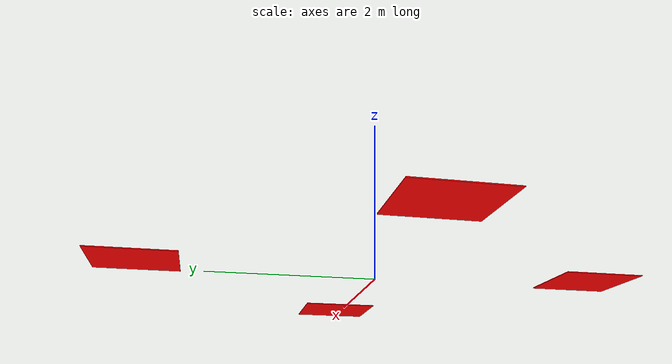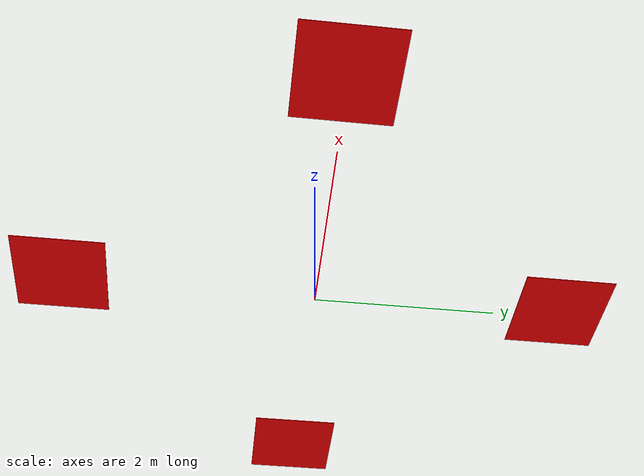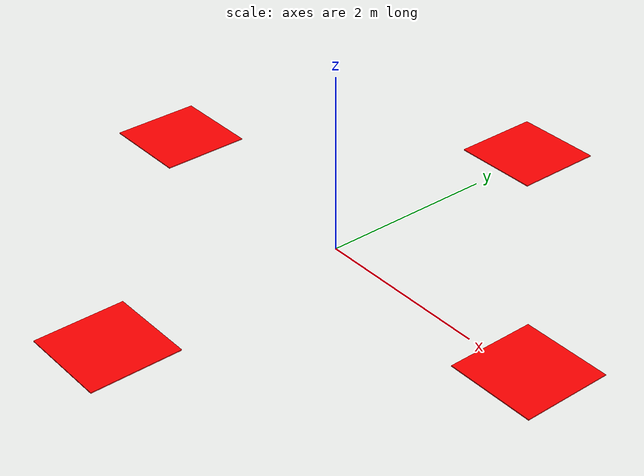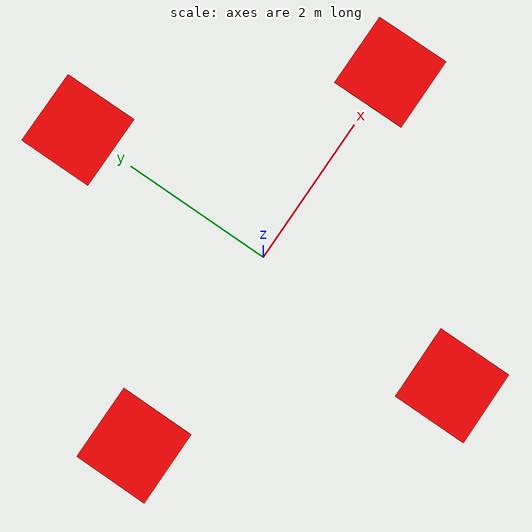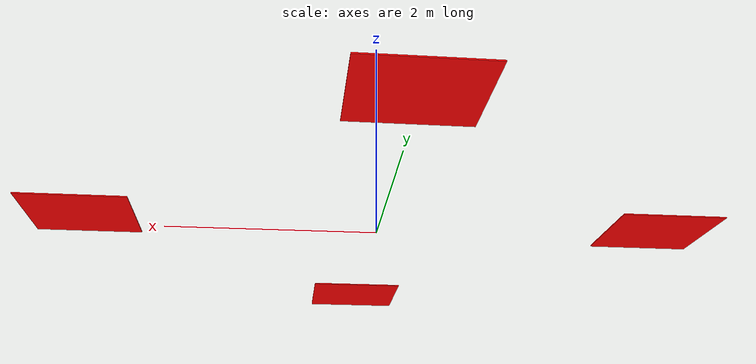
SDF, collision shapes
<?xml version="1.0" ?>
<sdf version="1.10">
  <model name="apollo_lander">
    <static>false</static> <!-- Lander can fall under gravity -->

    <link name="lander_link">
      <pose>0 0 0 0 0 0</pose> <!-- Slightly above ground -->

      <!-- Inertial properties for physics -->
      <inertial>
        <mass>100.0</mass>
        <inertia>
          <ixx>10.0</ixx>
          <iyy>10.0</iyy>
          <izz>10.0</izz>
          <ixy>0</ixy>
          <ixz>0</ixz>
          <iyz>0</iyz>
        </inertia>
      </inertial>

      <!-- IMU Sensor -->
      <sensor name="imu_sensor" type="imu">
        <always_on>true</always_on>
        <update_rate>100.0</update_rate>
        <visualize>true</visualize>
        <topic>imu</topic>
        <pose>0 0 0 0 0 0</pose>

        <imu>
          <angular_velocity/>
          <linear_acceleration/>
        </imu>

      </sensor>

      <!-- Camera Sensor -->
      <sensor name="camera_sensor" type="camera">
        <pose>0 0 -2 0 1.57834 0</pose>
        <camera>
          <horizontal_fov>1.047</horizontal_fov>
          <image>
            <width>320</width>
            <height>240</height>
            <format>R8G8B8</format>
          </image>
          <clip>
            <near>0.1</near>
            <far>1000</far>
          </clip>
        </camera>
        <topic>camera</topic>
        <always_on>true</always_on>
        <update_rate>-1</update_rate>
        <visualize>true</visualize>
      </sensor>

      <!-- Lidar Sensor -->
      <sensor name='gpu_lidar' type='gpu_lidar'>"
          <pose relative_to='lidar_frame'>0 0 -2 0 1.57834 0</pose>
          <topic>lidar</topic>
          <update_rate>10</update_rate>
          <ray>
              <scan>
                  <horizontal>
                      <samples>640</samples>
                      <resolution>1</resolution>
                      <min_angle>-1.396263</min_angle>
                      <max_angle>1.396263</max_angle>
                  </horizontal>
                  <vertical>
                      <samples>1</samples>
                      <resolution>0.01</resolution>
                      <min_angle>0</min_angle>
                      <max_angle>0</max_angle>
                  </vertical>
              </scan>
              <range>
                  <min>0.08</min>
                  <max>800.0</max>
                  <resolution>0.01</resolution>
              </range>
          </ray>
          <always_on>1</always_on>
          <visualize>true</visualize>
      </sensor>

      <visual name="camera_marker">
        <pose>0 0 -2   0 1.57834 0</pose> <!-- Match camera sensor pose -->
        <geometry>
          <box>
            <size>1 1 0.01</size>
          </box>
        </geometry>
        <material>
          <ambient>1 0 0 1</ambient>  <!-- Red -->
          <diffuse>1 0 0 1</diffuse>
        </material>
      </visual>

    <sensor name="altimeter_sensor" type="altimeter">
      <always_on>true</always_on>
      <update_rate>50.0</update_rate>
      <topic>altimeter</topic>
      <plugin name="gz::sim::systems::Altimeter" filename="gz-sim-altimeter-system"/>
    </sensor>

      <!-- Visual mesh -->
      <visual name="lander_visual">
        <geometry>
          <mesh>
            <uri>model://lander/meshes/lander.glb</uri>
            <scale>1 1 1</scale>
          </mesh>
        </geometry>
      </visual>

      <!-- +X leg -->
      <collision name="leg_posx_collision">
        <geometry>
          <box><size>1 1 0.01</size></box>
        </geometry>
        <pose>2.78 0 0.1 0 0 0</pose>
        <surface>
          <friction>
            <ode>
              <mu>0.1</mu>
              <mu2>0.1</mu2>
            </ode>
          </friction>
          <bounce>
            <restitution_coefficient>0.5</restitution_coefficient>
            <threshold>1.0</threshold>
          </bounce>
          <contact>
            <ode>
              <soft_cfm>0.0</soft_cfm>
              <soft_erp>0.2</soft_erp>
            </ode>
          </contact>
        </surface>
      </collision>

      <visual name="leg_posx_visual">
        <geometry>
          <box><size>1 1 0.01</size></box>
        </geometry>
        <pose>2.78 0 0.1 0 0 0</pose>
        <material>
          <ambient>0 1 0 1</ambient> <!-- Green -->
          <diffuse>0 1 0 1</diffuse>
        </material>
      </visual>
      <!-- -X leg -->
      <collision name="leg_negx_collision">
        <geometry>
          <box><size>1 1 0.01</size></box>
        </geometry>
        <pose>-2.78 0 0.1 0 0 0</pose>
        <surface>
          <friction>
            <ode>
              <mu>0.1</mu>
              <mu2>0.1</mu2>
            </ode>
          </friction>
          <bounce>
            <restitution_coefficient>0.5</restitution_coefficient>
            <threshold>1.0</threshold>
          </bounce>
          <contact>
            <ode>
              <soft_cfm>0.0</soft_cfm>
              <soft_erp>0.2</soft_erp>
            </ode>
          </contact>
        </surface>
      </collision>

      <!-- +Y leg -->
      <collision name="leg_posy_collision">
        <geometry>
          <box><size>1 1 0.01</size></box>
        </geometry>
        <pose>0 2.78 0.1 0 0 0</pose>
        <surface>
          <friction>
            <ode>
              <mu>0.1</mu>
              <mu2>0.1</mu2>
            </ode>
          </friction>
          <bounce>
            <restitution_coefficient>0.5</restitution_coefficient>
            <threshold>1.0</threshold>
          </bounce>
          <contact>
            <ode>
              <soft_cfm>0.0</soft_cfm>
              <soft_erp>0.2</soft_erp>
            </ode>
          </contact>
        </surface>
      </collision>

      <!-- -Y leg -->
      <collision name="leg_negy_collision">
        <geometry>
          <box><size>1 1 0.01</size></box>
        </geometry>
        <pose>0 -2.78 0.1 0 0 0</pose>
        <surface>
          <friction>
            <ode>
              <mu>0.5</mu>
              <mu2>0.5</mu2>
            </ode>
          </friction>
          <bounce>
            <restitution_coefficient>0.5</restitution_coefficient>
            <threshold>1.0</threshold>
          </bounce>
          <contact>
            <ode>
              <soft_cfm>0.0</soft_cfm>
              <soft_erp>0.2</soft_erp>
            </ode>
          </contact>
        </surface>
      </collision>

      <!-- Contact Sensor -->
      <sensor name="contact_sensor_posx" type="contact">
        <always_on>true</always_on>
        <update_rate>-1</update_rate>
        <contact>
          <collision>leg_posx_collision</collision>
          <topic>/contact_1</topic>
        </contact>

      </sensor>

      <sensor name="contact_sensor_negx" type="contact">
        <always_on>true</always_on>
        <update_rate>-1</update_rate>
        <contact>
          <collision>leg_negx_collision</collision>
          <topic>/contact_2</topic>
        </contact>

      </sensor>

      <sensor name="contact_sensor_posy" type="contact">
        <always_on>true</always_on>
        <update_rate>-1</update_rate>
        <contact>
          <collision>leg_posy_collision</collision>
          <topic>/contact_3</topic>
        </contact>

      </sensor>

      <sensor name="contact_sensor_negy" type="contact">
        <always_on>true</always_on>
        <update_rate>-1</update_rate>
        <contact>
          <collision>leg_negy_collision</collision>
          <topic>/contact_4</topic>
        </contact>

      </sensor>

   </link>

    <joint name="thruster_0_joint" type="fixed">
            <pose relative_to="lander_link">0 0 0 0 0 0</pose>
            <parent>lander_link</parent>
            <child>thruster_0</child>
            <axis>
                <dynamics>
                    <spring_reference>0</spring_reference>
                    <spring_stiffness>0</spring_stiffness>
                </dynamics>
                <xyz>0 0 1</xyz>
                <limit>
                    <lower>-1e+16</lower>
                    <upper>1e+16</upper>
                </limit>
            </axis>
            <physics>
                <ode>
                    <limit>
                        <cfm>0</cfm>
                        <erp>0.2</erp>
                    </limit>
                </ode>
            </physics>
        </joint>

        <link name="thruster_0">
            <gravity>false</gravity>
            <pose relative_to="thruster_0_joint">0 0 0 0 0 0</pose>
            <inertial>
                <pose>0 0 0 0 0 0</pose>
                <mass>0.001</mass>
                <inertia>
                    <ixx>1e-05</ixx>
                    <ixy>0</ixy>
                    <ixz>0</ixz>
                    <iyy>1e-05</iyy>
                    <iyz>0</iyz>
                    <izz>1e-05</izz>
                </inertia>
            </inertial>
        </link>
         <plugin filename="gz-sim-spacecraft-thruster-model-system" name="gz::sim::systems::SpacecraftThrusterModel">
            <link_name>thruster_0</link_name>
            <actuator_number>0</actuator_number>
            <duty_cycle_frequency>10</duty_cycle_frequency>
            <max_thrust>120</max_thrust>
            <topic>cmd_thrust</topic>
        </plugin>

  </model>
</sdf>
